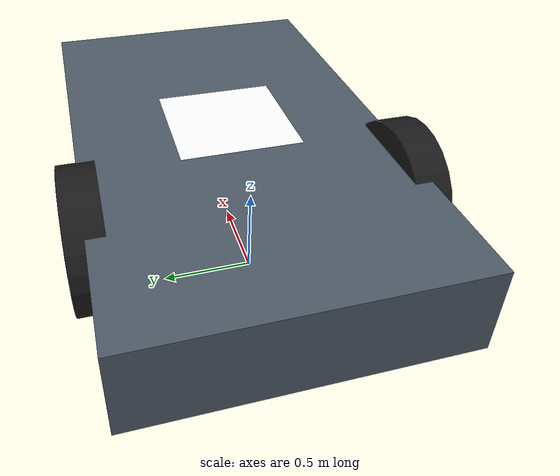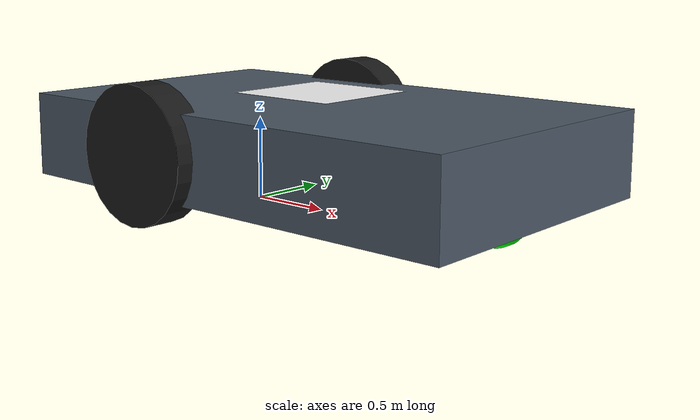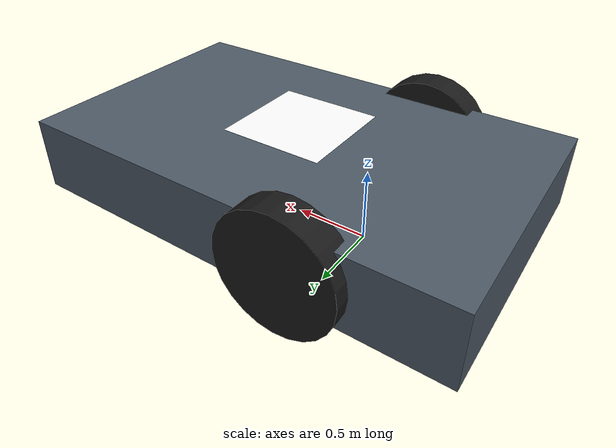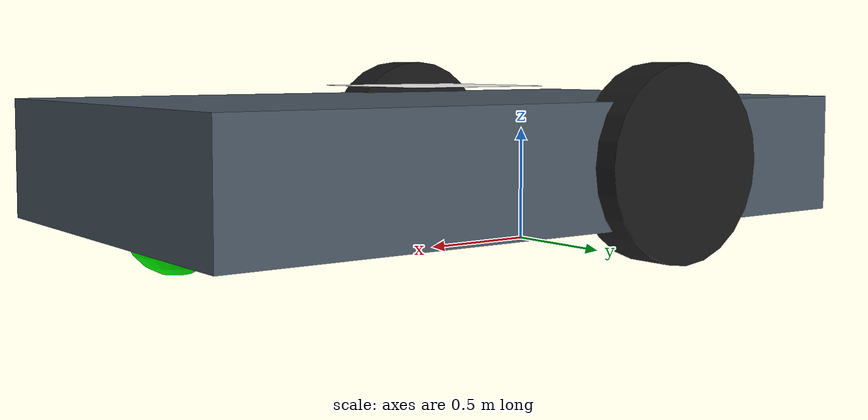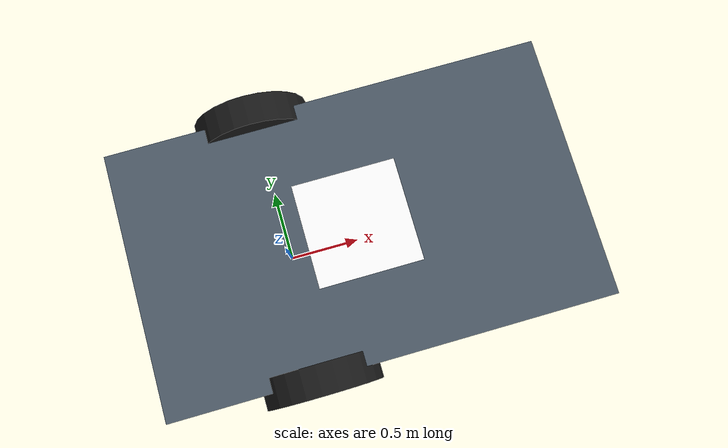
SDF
<?xml version="1.0" encoding="UTF-8"?>
<sdf version='1.9'>
  <model name='aruco_robot' canonical_link='chassis'>
    <pose>0 0 0 0 0 0</pose>   <!--the pose is relative to the world by default-->

    <!--chassis-->
    <link name='chassis'>
        <pose relative_to='__model__'>0.5 0 0.4 0 0 0</pose>
        <inertial> <!--inertial properties of the link mass, inertia matix-->
            <mass>1.14395</mass>
            <inertia>
                <ixx>0.095329</ixx>
                <ixy>0</ixy>
                <ixz>0</ixz>
                <iyy>0.381317</iyy>
                <iyz>0</iyz>
                <izz>0.476646</izz>
            </inertia>
        </inertial>
        <visual name='visual'>
            <geometry>
                <box>
                    <size>3.0 1.8 0.5</size>
                </box>
            </geometry>
            <!--Color of the link-->
            <material>
                <ambient>0.3 0.35 0.4 1</ambient>
                <diffuse>0.3 0.35 0.4 1</diffuse>
                <specular>0.3 0.35 0.4 1</specular>
            </material>
        </visual>
        <collision name='collision'>
            <geometry>
                <box>
                    <size>3.0 1.8 0.5</size>
                </box>
            </geometry>
        </collision>
    </link>

    <!--Left wheel-->
    <link name='left_wheel'>
        <pose relative_to="chassis">-0.5 0.9 0 -1.5707 0 0</pose> <!--angles are in radian-->
        <inertial>
            <mass>1</mass>
            <inertia>
                <ixx>0.043333</ixx>
                <ixy>0</ixy>
                <ixz>0</ixz>
                <iyy>0.043333</iyy>
                <iyz>0</iyz>
                <izz>0.08</izz>
            </inertia>
        </inertial>
        <visual name='visual'>
            <geometry>
                <cylinder>
                    <radius>0.4</radius>
                    <length>0.2</length>
                </cylinder>
            </geometry>
            <material>
                <ambient>0.1 0.1 0.1 1</ambient>
                <diffuse>0.1 0.1 0.1 1</diffuse>
                <specular>0.1 0.1 0.1 1</specular>
            </material>
        </visual>
        <collision name='collision'>
            <geometry>
                <cylinder>
                    <radius>0.4</radius>
                    <length>0.2</length>
                </cylinder>
            </geometry>
        </collision>
    </link>

    <!--The same as left wheel but with different position-->
    <link name='right_wheel'>
        <pose relative_to="chassis">-0.5 -0.9 0 -1.5707 0 0</pose> <!--angles are in radian-->
        <inertial>
            <mass>1</mass>
            <inertia>
                <ixx>0.043333</ixx>
                <ixy>0</ixy>
                <ixz>0</ixz>
                <iyy>0.043333</iyy>
                <iyz>0</iyz>
                <izz>0.08</izz>
            </inertia>
        </inertial>
        <visual name='visual'>
            <geometry>
                <cylinder>
                    <radius>0.4</radius>
                    <length>0.2</length>
                </cylinder>
            </geometry>
            <material>
                <ambient>0.1 0.1 0.1 1</ambient>
                <diffuse>0.1 0.1 0.1 1</diffuse>
                <specular>0.1 0.1 0.1 1</specular>
            </material>
        </visual>
        <collision name='collision'>
            <geometry>
                <cylinder>
                    <radius>0.4</radius>
                    <length>0.2</length>
                </cylinder>
            </geometry>
        </collision>
    </link>

    <!--arbitrary frame-->
    <frame name="caster_frame" attached_to='chassis'>
        <pose>1.2 0 -0.2 0 0 0</pose>
    </frame>

    <!--caster wheel-->
    <link name='caster'>
        <pose relative_to='caster_frame'/>
        <inertial>
            <mass>1</mass>
            <inertia>
                <ixx>0.016</ixx>
                <ixy>0</ixy>
                <ixz>0</ixz>
                <iyy>0.016</iyy>
                <iyz>0</iyz>
                <izz>0.016</izz>
            </inertia>
        </inertial>
        <visual name='visual'>
            <geometry>
                <sphere>
                    <radius>0.2</radius>
                </sphere>
            </geometry>
            <material>
                <ambient>0.0 1 0.0 1</ambient>
                <diffuse>0.0 1 0.0 1</diffuse>
                <specular>0.0 1 0.0 1</specular>
            </material>
        </visual>
        <collision name='collision'>
            <geometry>
                <sphere>
                    <radius>0.2</radius>
                </sphere>
            </geometry>
        </collision>
    </link>

    <!--left wheel joint-->
    <joint name='left_wheel_joint' type='revolute'>
        <pose relative_to='left_wheel'/>
        <parent>chassis</parent>
        <child>left_wheel</child>
        <axis>
            <xyz expressed_in='__model__'>0 1 0</xyz> <!--can be descired to any frame or even arbitrary frames-->
            <limit>
                <lower>-1.79769e+308</lower>    <!--negative infinity-->
                <upper>1.79769e+308</upper>     <!--positive infinity-->
            </limit>
        </axis>
    </joint>

    <!--right wheel joint-->
    <joint name='right_wheel_joint' type='revolute'>
        <pose relative_to='right_wheel'/>
        <parent>chassis</parent>
        <child>right_wheel</child>
        <axis>
            <xyz expressed_in='__model__'>0 1 0</xyz>
            <limit>
                <lower>-1.79769e+308</lower>    <!--negative infinity-->
                <upper>1.79769e+308</upper>     <!--positive infinity-->
            </limit>
        </axis>
    </joint>

    <!--caster wheel joint--> <!--pose defult value is the child-->
    <joint name='caster_wheel' type='ball'>
        <parent>chassis</parent>
        <child>caster</child>
    </joint>

    <!-- ArUco marker sur le dessus du robot -->
    <link name='aruco_marker'>
        <pose relative_to="chassis">0 0 0.3 0 0 0</pose>
        <inertial>
            <mass>0.1</mass>
            <inertia>
                <ixx>0.001</ixx>
                <ixy>0</ixy>
                <ixz>0</ixz>
                <iyy>0.001</iyy>
                <iyz>0</iyz>
                <izz>0.001</izz>
            </inertia>
        </inertial>
        <visual name='aruco_visual'>
            <geometry>
                <plane>
                    <normal>0 0 1</normal>
                    <size>0.7 0.7</size>
                </plane>
            </geometry>
            <material>
                <diffuse>1 1 1 1</diffuse>
                <specular>0.4 0.4 0.4 1</specular>
                <pbr>
                    <metal>
                        <albedo_map>model://arucotag/arucotag.png</albedo_map>
                    </metal>
                </pbr>
            </material>
        </visual>
        <collision name='aruco_collision'>
            <geometry>
                <box>
                    <size>0.7 0.7 0.01</size>
                </box>
            </geometry>
        </collision>
    </link>

    <!-- Joint pour fixer l'ArUco sur le chassis -->
    <joint name='aruco_joint' type='fixed'>
        <parent>chassis</parent>
        <child>aruco_marker</child>
    </joint>

    <!-- Plugin pour contrôler le robot avec cmd_vel -->
    <plugin
      filename="gz-sim-diff-drive-system"
      name="gz::sim::systems::DiffDrive">
      <left_joint>left_wheel_joint</left_joint>
      <right_joint>right_wheel_joint</right_joint>
      <wheel_separation>1.8</wheel_separation>
      <wheel_radius>0.4</wheel_radius>
      <odom_publish_frequency>50</odom_publish_frequency>
      <topic>cmd_vel</topic>
    </plugin>

  </model>
</sdf>
